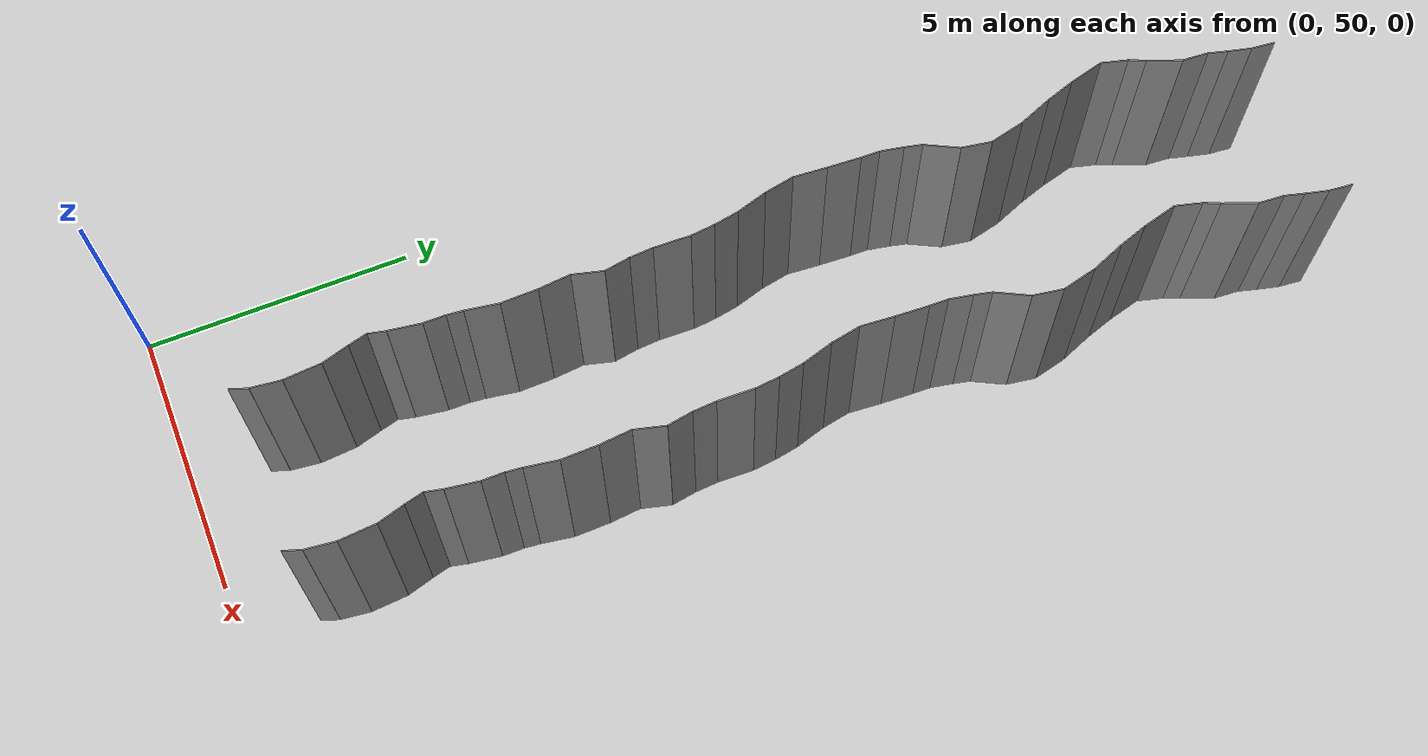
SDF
<sdf version="1.6">
 <world name="default">
  <model name="ground_plane">
   <static>1</static>
   <link name="link">
    <collision name="collision">
     <geometry><plane><normal>0 0 1</normal><size>200 200</size></plane></geometry>
     <surface><friction><ode><mu>100</mu><mu2>50</mu2></ode></friction></surface>
    </collision>
    <visual name="visual">
     <cast_shadows>0</cast_shadows>
     <geometry><plane><normal>0 0 1</normal><size>200 200</size></plane></geometry>
     <material>
      <script><uri>file://media/materials/scripts/gazebo.material</uri><name>Gazebo/Grey</name></script>
     </material>
    </visual>
   </link>
   <pose>0 100 0 0 -0 0</pose>
  </model>
  <model name="wall_224">
   <static>1</static>
   <pose>3.2141089525234556 51.56138882406007 2 0 0 -0.3240134306546957</pose>
   <link name="link">
    <collision name="collision"><geometry><box><size>0.02 0.346863804644 4</size></box></geometry></collision>
    <visual name="visual">
     <material>
      <script><name>Gazebo/Grey</name><uri>file://media/materials/scripts/gazebo.material</uri></script>
     </material>
     <geometry><box><size>0.02 0.346863804644 4</size></box></geometry>
    </visual>
   </link>
  </model>
  <model name="wall_225">
   <static>1</static>
   <pose>6.214108952523455 51.56138882406007 2 0 0 -0.3240134306546957</pose>
   <link name="link">
    <collision name="collision"><geometry><box><size>0.02 0.346863804644 4</size></box></geometry></collision>
    <visual name="visual">
     <material>
      <script><name>Gazebo/Grey</name><uri>file://media/materials/scripts/gazebo.material</uri></script>
     </material>
     <geometry><box><size>0.02 0.346863804644 4</size></box></geometry>
    </visual>
   </link>
  </model>
  <model name="wall_226">
   <static>1</static>
   <pose>3.300787356913296 52.006380681514905 2 0 0 -0.11166467689607984</pose>
   <link name="link">
    <collision name="collision"><geometry><box><size>0.02 0.564685746026 4</size></box></geometry></collision>
    <visual name="visual">
     <material>
      <script><name>Gazebo/Grey</name><uri>file://media/materials/scripts/gazebo.material</uri></script>
     </material>
     <geometry><box><size>0.02 0.564685746026 4</size></box></geometry>
    </visual>
   </link>
  </model>
  <model name="wall_227">
   <static>1</static>
   <pose>6.300787356913296 52.006380681514905 2 0 0 -0.11166467689607984</pose>
   <link name="link">
    <collision name="collision"><geometry><box><size>0.02 0.564685746026 4</size></box></geometry></collision>
    <visual name="visual">
     <material>
      <script><name>Gazebo/Grey</name><uri>file://media/materials/scripts/gazebo.material</uri></script>
     </material>
     <geometry><box><size>0.02 0.564685746026 4</size></box></geometry>
    </visual>
   </link>
  </model>
  <model name="wall_228">
   <static>1</static>
   <pose>3.3062415293632816 52.63462890343357 2 0 0 0.07466903795491382</pose>
   <link name="link">
    <collision name="collision"><geometry><box><size>0.02 0.697270475184 4</size></box></geometry></collision>
    <visual name="visual">
     <material>
      <script><name>Gazebo/Grey</name><uri>file://media/materials/scripts/gazebo.material</uri></script>
     </material>
     <geometry><box><size>0.02 0.697270475184 4</size></box></geometry>
    </visual>
   </link>
  </model>
  <model name="wall_229">
   <static>1</static>
   <pose>6.306241529363282 52.63462890343357 2 0 0 0.07466903795491382</pose>
   <link name="link">
    <collision name="collision"><geometry><box><size>0.02 0.697270475184 4</size></box></geometry></collision>
    <visual name="visual">
     <material>
      <script><name>Gazebo/Grey</name><uri>file://media/materials/scripts/gazebo.material</uri></script>
     </material>
     <geometry><box><size>0.02 0.697270475184 4</size></box></geometry>
    </visual>
   </link>
  </model>
  <model name="wall_230">
   <static>1</static>
   <pose>3.2071329257017234 53.236075350964654 2 0 0 0.2804520608229891</pose>
   <link name="link">
    <collision name="collision"><geometry><box><size>0.02 0.528201954046 4</size></box></geometry></collision>
    <visual name="visual">
     <material>
      <script><name>Gazebo/Grey</name><uri>file://media/materials/scripts/gazebo.material</uri></script>
     </material>
     <geometry><box><size>0.02 0.528201954046 4</size></box></geometry>
    </visual>
   </link>
  </model>
  <model name="wall_231">
   <static>1</static>
   <pose>6.207132925701723 53.236075350964654 2 0 0 0.2804520608229891</pose>
   <link name="link">
    <collision name="collision"><geometry><box><size>0.02 0.528201954046 4</size></box></geometry></collision>
    <visual name="visual">
     <material>
      <script><name>Gazebo/Grey</name><uri>file://media/materials/scripts/gazebo.material</uri></script>
     </material>
     <geometry><box><size>0.02 0.528201954046 4</size></box></geometry>
    </visual>
   </link>
  </model>
  <model name="wall_232">
   <static>1</static>
   <pose>3.087802989265437 53.66736365586836 2 0 0 0.2547792932424635</pose>
   <link name="link">
    <collision name="collision"><geometry><box><size>0.02 0.366853714408 4</size></box></geometry></collision>
    <visual name="visual">
     <material>
      <script><name>Gazebo/Grey</name><uri>file://media/materials/scripts/gazebo.material</uri></script>
     </material>
     <geometry><box><size>0.02 0.366853714408 4</size></box></geometry>
    </visual>
   </link>
  </model>
  <model name="wall_233">
   <static>1</static>
   <pose>6.0878029892654375 53.66736365586836 2 0 0 0.2547792932424635</pose>
   <link name="link">
    <collision name="collision"><geometry><box><size>0.02 0.366853714408 4</size></box></geometry></collision>
    <visual name="visual">
     <material>
      <script><name>Gazebo/Grey</name><uri>file://media/materials/scripts/gazebo.material</uri></script>
     </material>
     <geometry><box><size>0.02 0.366853714408 4</size></box></geometry>
    </visual>
   </link>
  </model>
  <model name="wall_234">
   <static>1</static>
   <pose>3.0771454903987463 54.00668623495577 2 0 0 -0.21638632822851983</pose>
   <link name="link">
    <collision name="collision"><geometry><box><size>0.02 0.331361318959 4</size></box></geometry></collision>
    <visual name="visual">
     <material>
      <script><name>Gazebo/Grey</name><uri>file://media/materials/scripts/gazebo.material</uri></script>
     </material>
     <geometry><box><size>0.02 0.331361318959 4</size></box></geometry>
    </visual>
   </link>
  </model>
  <model name="wall_235">
   <static>1</static>
   <pose>6.077145490398746 54.00668623495577 2 0 0 -0.21638632822851983</pose>
   <link name="link">
    <collision name="collision"><geometry><box><size>0.02 0.331361318959 4</size></box></geometry></collision>
    <visual name="visual">
     <material>
      <script><name>Gazebo/Grey</name><uri>file://media/materials/scripts/gazebo.material</uri></script>
     </material>
     <geometry><box><size>0.02 0.331361318959 4</size></box></geometry>
    </visual>
   </link>
  </model>
  <model name="wall_236">
   <static>1</static>
   <pose>3.155814588655785 54.47214756548829 2 0 0 -0.14099137475419268</pose>
   <link name="link">
    <collision name="collision"><geometry><box><size>0.02 0.613375210009 4</size></box></geometry></collision>
    <visual name="visual">
     <material>
      <script><name>Gazebo/Grey</name><uri>file://media/materials/scripts/gazebo.material</uri></script>
     </material>
     <geometry><box><size>0.02 0.613375210009 4</size></box></geometry>
    </visual>
   </link>
  </model>
  <model name="wall_237">
   <static>1</static>
   <pose>6.155814588655785 54.47214756548829 2 0 0 -0.14099137475419268</pose>
   <link name="link">
    <collision name="collision"><geometry><box><size>0.02 0.613375210009 4</size></box></geometry></collision>
    <visual name="visual">
     <material>
      <script><name>Gazebo/Grey</name><uri>file://media/materials/scripts/gazebo.material</uri></script>
     </material>
     <geometry><box><size>0.02 0.613375210009 4</size></box></geometry>
    </visual>
   </link>
  </model>
  <model name="wall_238">
   <static>1</static>
   <pose>3.1989945356877767 54.98062237627742 2 0 0 -0.00040402634944552084</pose>
   <link name="link">
    <collision name="collision"><geometry><box><size>0.02 0.409660862873 4</size></box></geometry></collision>
    <visual name="visual">
     <material>
      <script><name>Gazebo/Grey</name><uri>file://media/materials/scripts/gazebo.material</uri></script>
     </material>
     <geometry><box><size>0.02 0.409660862873 4</size></box></geometry>
    </visual>
   </link>
  </model>
  <model name="wall_239">
   <static>1</static>
   <pose>6.198994535687777 54.98062237627742 2 0 0 -0.00040402634944552084</pose>
   <link name="link">
    <collision name="collision"><geometry><box><size>0.02 0.409660862873 4</size></box></geometry></collision>
    <visual name="visual">
     <material>
      <script><name>Gazebo/Grey</name><uri>file://media/materials/scripts/gazebo.material</uri></script>
     </material>
     <geometry><box><size>0.02 0.409660862873 4</size></box></geometry>
    </visual>
   </link>
  </model>
  <model name="wall_240">
   <static>1</static>
   <pose>3.213927627974739 55.33591123557289 2 0 0 -0.0983819309122988</pose>
   <link name="link">
    <collision name="collision"><geometry><box><size>0.02 0.302379073389 4</size></box></geometry></collision>
    <visual name="visual">
     <material>
      <script><name>Gazebo/Grey</name><uri>file://media/materials/scripts/gazebo.material</uri></script>
     </material>
     <geometry><box><size>0.02 0.302379073389 4</size></box></geometry>
    </visual>
   </link>
  </model>
  <model name="wall_241">
   <static>1</static>
   <pose>6.213927627974739 55.33591123557289 2 0 0 -0.0983819309122988</pose>
   <link name="link">
    <collision name="collision"><geometry><box><size>0.02 0.302379073389 4</size></box></geometry></collision>
    <visual name="visual">
     <material>
      <script><name>Gazebo/Grey</name><uri>file://media/materials/scripts/gazebo.material</uri></script>
     </material>
     <geometry><box><size>0.02 0.302379073389 4</size></box></geometry>
    </visual>
   </link>
  </model>
  <model name="wall_242">
   <static>1</static>
   <pose>3.276093314935174 55.794129614914524 2 0 0 -0.15254670400230202</pose>
   <link name="link">
    <collision name="collision"><geometry><box><size>0.02 0.622751699925 4</size></box></geometry></collision>
    <visual name="visual">
     <material>
      <script><name>Gazebo/Grey</name><uri>file://media/materials/scripts/gazebo.material</uri></script>
     </material>
     <geometry><box><size>0.02 0.622751699925 4</size></box></geometry>
    </visual>
   </link>
  </model>
  <model name="wall_243">
   <static>1</static>
   <pose>6.276093314935174 55.794129614914524 2 0 0 -0.15254670400230202</pose>
   <link name="link">
    <collision name="collision"><geometry><box><size>0.02 0.622751699925 4</size></box></geometry></collision>
    <visual name="visual">
     <material>
      <script><name>Gazebo/Grey</name><uri>file://media/materials/scripts/gazebo.material</uri></script>
     </material>
     <geometry><box><size>0.02 0.622751699925 4</size></box></geometry>
    </visual>
   </link>
  </model>
  <model name="wall_244">
   <static>1</static>
   <pose>3.3164511366660134 56.44248215823689 2 0 0 0.02042487748180735</pose>
   <link name="link">
    <collision name="collision"><geometry><box><size>0.02 0.68132732875 4</size></box></geometry></collision>
    <visual name="visual">
     <material>
      <script><name>Gazebo/Grey</name><uri>file://media/materials/scripts/gazebo.material</uri></script>
     </material>
     <geometry><box><size>0.02 0.68132732875 4</size></box></geometry>
    </visual>
   </link>
  </model>
  <model name="wall_245">
   <static>1</static>
   <pose>6.316451136666013 56.44248215823689 2 0 0 0.02042487748180735</pose>
   <link name="link">
    <collision name="collision"><geometry><box><size>0.02 0.68132732875 4</size></box></geometry></collision>
    <visual name="visual">
     <material>
      <script><name>Gazebo/Grey</name><uri>file://media/materials/scripts/gazebo.material</uri></script>
     </material>
     <geometry><box><size>0.02 0.68132732875 4</size></box></geometry>
    </visual>
   </link>
  </model>
  <model name="wall_246">
   <static>1</static>
   <pose>3.2818159672972245 57.08306931194954 2 0 0 0.09200003128254432</pose>
   <link name="link">
    <collision name="collision"><geometry><box><size>0.02 0.602537231557 4</size></box></geometry></collision>
    <visual name="visual">
     <material>
      <script><name>Gazebo/Grey</name><uri>file://media/materials/scripts/gazebo.material</uri></script>
     </material>
     <geometry><box><size>0.02 0.602537231557 4</size></box></geometry>
    </visual>
   </link>
  </model>
  <model name="wall_247">
   <static>1</static>
   <pose>6.2818159672972245 57.08306931194954 2 0 0 0.09200003128254432</pose>
   <link name="link">
    <collision name="collision"><geometry><box><size>0.02 0.602537231557 4</size></box></geometry></collision>
    <visual name="visual">
     <material>
      <script><name>Gazebo/Grey</name><uri>file://media/materials/scripts/gazebo.material</uri></script>
     </material>
     <geometry><box><size>0.02 0.602537231557 4</size></box></geometry>
    </visual>
   </link>
  </model>
  <model name="wall_248">
   <static>1</static>
   <pose>3.326720095772563 57.66474867620582 2 0 0 -0.2521844929648068</pose>
   <link name="link">
    <collision name="collision"><geometry><box><size>0.02 0.58177126213 4</size></box></geometry></collision>
    <visual name="visual">
     <material>
      <script><name>Gazebo/Grey</name><uri>file://media/materials/scripts/gazebo.material</uri></script>
     </material>
     <geometry><box><size>0.02 0.58177126213 4</size></box></geometry>
    </visual>
   </link>
  </model>
  <model name="wall_249">
   <static>1</static>
   <pose>6.326720095772563 57.66474867620582 2 0 0 -0.2521844929648068</pose>
   <link name="link">
    <collision name="collision"><geometry><box><size>0.02 0.58177126213 4</size></box></geometry></collision>
    <visual name="visual">
     <material>
      <script><name>Gazebo/Grey</name><uri>file://media/materials/scripts/gazebo.material</uri></script>
     </material>
     <geometry><box><size>0.02 0.58177126213 4</size></box></geometry>
    </visual>
   </link>
  </model>
  <model name="wall_250">
   <static>1</static>
   <pose>3.36007095331097 58.18201699966343 2 0 0 0.16501235390799612</pose>
   <link name="link">
    <collision name="collision"><geometry><box><size>0.02 0.477655322848 4</size></box></geometry></collision>
    <visual name="visual">
     <material>
      <script><name>Gazebo/Grey</name><uri>file://media/materials/scripts/gazebo.material</uri></script>
     </material>
     <geometry><box><size>0.02 0.477655322848 4</size></box></geometry>
    </visual>
   </link>
  </model>
  <model name="wall_251">
   <static>1</static>
   <pose>6.36007095331097 58.18201699966343 2 0 0 0.16501235390799612</pose>
   <link name="link">
    <collision name="collision"><geometry><box><size>0.02 0.477655322848 4</size></box></geometry></collision>
    <visual name="visual">
     <material>
      <script><name>Gazebo/Grey</name><uri>file://media/materials/scripts/gazebo.material</uri></script>
     </material>
     <geometry><box><size>0.02 0.477655322848 4</size></box></geometry>
    </visual>
   </link>
  </model>
  <model name="wall_252">
   <static>1</static>
   <pose>3.3062960410877507 58.636267550951 2 0 0 0.06641426696674312</pose>
   <link name="link">
    <collision name="collision"><geometry><box><size>0.02 0.438300378282 4</size></box></geometry></collision>
    <visual name="visual">
     <material>
      <script><name>Gazebo/Grey</name><uri>file://media/materials/scripts/gazebo.material</uri></script>
     </material>
     <geometry><box><size>0.02 0.438300378282 4</size></box></geometry>
    </visual>
   </link>
  </model>
  <model name="wall_253">
   <static>1</static>
   <pose>6.306296041087751 58.636267550951 2 0 0 0.06641426696674312</pose>
   <link name="link">
    <collision name="collision"><geometry><box><size>0.02 0.438300378282 4</size></box></geometry></collision>
    <visual name="visual">
     <material>
      <script><name>Gazebo/Grey</name><uri>file://media/materials/scripts/gazebo.material</uri></script>
     </material>
     <geometry><box><size>0.02 0.438300378282 4</size></box></geometry>
    </visual>
   </link>
  </model>
  <model name="wall_254">
   <static>1</static>
   <pose>3.301097102014743 59.195299117328 2 0 0 -0.027449146413969425</pose>
   <link name="link">
    <collision name="collision"><geometry><box><size>0.02 0.680985568992 4</size></box></geometry></collision>
    <visual name="visual">
     <material>
      <script><name>Gazebo/Grey</name><uri>file://media/materials/scripts/gazebo.material</uri></script>
     </material>
     <geometry><box><size>0.02 0.680985568992 4</size></box></geometry>
    </visual>
   </link>
  </model>
  <model name="wall_255">
   <static>1</static>
   <pose>6.301097102014743 59.195299117328 2 0 0 -0.027449146413969425</pose>
   <link name="link">
    <collision name="collision"><geometry><box><size>0.02 0.680985568992 4</size></box></geometry></collision>
    <visual name="visual">
     <material>
      <script><name>Gazebo/Grey</name><uri>file://media/materials/scripts/gazebo.material</uri></script>
     </material>
     <geometry><box><size>0.02 0.680985568992 4</size></box></geometry>
    </visual>
   </link>
  </model>
  <model name="wall_256">
   <static>1</static>
   <pose>3.2882475841567906 59.758694300522194 2 0 0 0.09918702863541397</pose>
   <link name="link">
    <collision name="collision"><geometry><box><size>0.02 0.448264548575 4</size></box></geometry></collision>
    <visual name="visual">
     <material>
      <script><name>Gazebo/Grey</name><uri>file://media/materials/scripts/gazebo.material</uri></script>
     </material>
     <geometry><box><size>0.02 0.448264548575 4</size></box></geometry>
    </visual>
   </link>
  </model>
  <model name="wall_257">
   <static>1</static>
   <pose>6.288247584156791 59.758694300522194 2 0 0 0.09918702863541397</pose>
   <link name="link">
    <collision name="collision"><geometry><box><size>0.02 0.448264548575 4</size></box></geometry></collision>
    <visual name="visual">
     <material>
      <script><name>Gazebo/Grey</name><uri>file://media/materials/scripts/gazebo.material</uri></script>
     </material>
     <geometry><box><size>0.02 0.448264548575 4</size></box></geometry>
    </visual>
   </link>
  </model>
  <model name="wall_258">
   <static>1</static>
   <pose>3.225162232379213 60.2123693109512 2 0 0 0.175466058345245</pose>
   <link name="link">
    <collision name="collision"><geometry><box><size>0.02 0.468482101381 4</size></box></geometry></collision>
    <visual name="visual">
     <material>
      <script><name>Gazebo/Grey</name><uri>file://media/materials/scripts/gazebo.material</uri></script>
     </material>
     <geometry><box><size>0.02 0.468482101381 4</size></box></geometry>
    </visual>
   </link>
  </model>
  <model name="wall_259">
   <static>1</static>
   <pose>6.225162232379213 60.2123693109512 2 0 0 0.175466058345245</pose>
   <link name="link">
    <collision name="collision"><geometry><box><size>0.02 0.468482101381 4</size></box></geometry></collision>
    <visual name="visual">
     <material>
      <script><name>Gazebo/Grey</name><uri>file://media/materials/scripts/gazebo.material</uri></script>
     </material>
     <geometry><box><size>0.02 0.468482101381 4</size></box></geometry>
    </visual>
   </link>
  </model>
  <model name="wall_260">
   <static>1</static>
   <pose>3.098531344197385 60.72968160796762 2 0 0 0.2906236432433135</pose>
   <link name="link">
    <collision name="collision"><geometry><box><size>0.02 0.598430886243 4</size></box></geometry></collision>
    <visual name="visual">
     <material>
      <script><name>Gazebo/Grey</name><uri>file://media/materials/scripts/gazebo.material</uri></script>
     </material>
     <geometry><box><size>0.02 0.598430886243 4</size></box></geometry>
    </visual>
   </link>
  </model>
  <model name="wall_261">
   <static>1</static>
   <pose>6.098531344197385 60.72968160796762 2 0 0 0.2906236432433135</pose>
   <link name="link">
    <collision name="collision"><geometry><box><size>0.02 0.598430886243 4</size></box></geometry></collision>
    <visual name="visual">
     <material>
      <script><name>Gazebo/Grey</name><uri>file://media/materials/scripts/gazebo.material</uri></script>
     </material>
     <geometry><box><size>0.02 0.598430886243 4</size></box></geometry>
    </visual>
   </link>
  </model>
  <model name="wall_262">
   <static>1</static>
   <pose>2.9596139364419765 61.29311116914219 2 0 0 0.18982766837920925</pose>
   <link name="link">
    <collision name="collision"><geometry><box><size>0.02 0.563648165056 4</size></box></geometry></collision>
    <visual name="visual">
     <material>
      <script><name>Gazebo/Grey</name><uri>file://media/materials/scripts/gazebo.material</uri></script>
     </material>
     <geometry><box><size>0.02 0.563648165056 4</size></box></geometry>
    </visual>
   </link>
  </model>
  <model name="wall_263">
   <static>1</static>
   <pose>5.9596139364419765 61.29311116914219 2 0 0 0.18982766837920925</pose>
   <link name="link">
    <collision name="collision"><geometry><box><size>0.02 0.563648165056 4</size></box></geometry></collision>
    <visual name="visual">
     <material>
      <script><name>Gazebo/Grey</name><uri>file://media/materials/scripts/gazebo.material</uri></script>
     </material>
     <geometry><box><size>0.02 0.563648165056 4</size></box></geometry>
    </visual>
   </link>
  </model>
  <model name="wall_264">
   <static>1</static>
   <pose>2.9283147972181087 61.881228269095644 2 0 0 -0.07015212762809685</pose>
   <link name="link">
    <collision name="collision"><geometry><box><size>0.02 0.624246406859 4</size></box></geometry></collision>
    <visual name="visual">
     <material>
      <script><name>Gazebo/Grey</name><uri>file://media/materials/scripts/gazebo.material</uri></script>
     </material>
     <geometry><box><size>0.02 0.624246406859 4</size></box></geometry>
    </visual>
   </link>
  </model>
  <model name="wall_265">
   <static>1</static>
   <pose>5.928314797218109 61.881228269095644 2 0 0 -0.07015212762809685</pose>
   <link name="link">
    <collision name="collision"><geometry><box><size>0.02 0.624246406859 4</size></box></geometry></collision>
    <visual name="visual">
     <material>
      <script><name>Gazebo/Grey</name><uri>file://media/materials/scripts/gazebo.material</uri></script>
     </material>
     <geometry><box><size>0.02 0.624246406859 4</size></box></geometry>
    </visual>
   </link>
  </model>
  <model name="wall_266">
   <static>1</static>
   <pose>2.9660271109237946 62.50050321813883 2 0 0 -0.05137780929476877</pose>
   <link name="link">
    <collision name="collision"><geometry><box><size>0.02 0.616652623419 4</size></box></geometry></collision>
    <visual name="visual">
     <material>
      <script><name>Gazebo/Grey</name><uri>file://media/materials/scripts/gazebo.material</uri></script>
     </material>
     <geometry><box><size>0.02 0.616652623419 4</size></box></geometry>
    </visual>
   </link>
  </model>
  <model name="wall_267">
   <static>1</static>
   <pose>5.966027110923795 62.50050321813883 2 0 0 -0.05137780929476877</pose>
   <link name="link">
    <collision name="collision"><geometry><box><size>0.02 0.616652623419 4</size></box></geometry></collision>
    <visual name="visual">
     <material>
      <script><name>Gazebo/Grey</name><uri>file://media/materials/scripts/gazebo.material</uri></script>
     </material>
     <geometry><box><size>0.02 0.616652623419 4</size></box></geometry>
    </visual>
   </link>
  </model>
  <model name="wall_268">
   <static>1</static>
   <pose>2.984484041568865 62.98031835009344 2 0 0 -0.015256725196990919</pose>
   <link name="link">
    <collision name="collision"><geometry><box><size>0.02 0.343831359687 4</size></box></geometry></collision>
    <visual name="visual">
     <material>
      <script><name>Gazebo/Grey</name><uri>file://media/materials/scripts/gazebo.material</uri></script>
     </material>
     <geometry><box><size>0.02 0.343831359687 4</size></box></geometry>
    </visual>
   </link>
  </model>
  <model name="wall_269">
   <static>1</static>
   <pose>5.984484041568865 62.98031835009344 2 0 0 -0.015256725196990919</pose>
   <link name="link">
    <collision name="collision"><geometry><box><size>0.02 0.343831359687 4</size></box></geometry></collision>
    <visual name="visual">
     <material>
      <script><name>Gazebo/Grey</name><uri>file://media/materials/scripts/gazebo.material</uri></script>
     </material>
     <geometry><box><size>0.02 0.343831359687 4</size></box></geometry>
    </visual>
   </link>
  </model>
  <model name="wall_270">
   <static>1</static>
   <pose>3.0262152863481733 63.366435592120496 2 0 0 -0.180572328115979</pose>
   <link name="link">
    <collision name="collision"><geometry><box><size>0.02 0.435524299979 4</size></box></geometry></collision>
    <visual name="visual">
     <material>
      <script><name>Gazebo/Grey</name><uri>file://media/materials/scripts/gazebo.material</uri></script>
     </material>
     <geometry><box><size>0.02 0.435524299979 4</size></box></geometry>
    </visual>
   </link>
  </model>
  <model name="wall_271">
   <static>1</static>
   <pose>6.026215286348173 63.366435592120496 2 0 0 -0.180572328115979</pose>
   <link name="link">
    <collision name="collision"><geometry><box><size>0.02 0.435524299979 4</size></box></geometry></collision>
    <visual name="visual">
     <material>
      <script><name>Gazebo/Grey</name><uri>file://media/materials/scripts/gazebo.material</uri></script>
     </material>
     <geometry><box><size>0.02 0.435524299979 4</size></box></geometry>
    </visual>
   </link>
  </model>
  <model name="wall_272">
   <static>1</static>
   <pose>3.101852068460148 63.740610713403484 2 0 0 -0.22451802937565907</pose>
   <link name="link">
    <collision name="collision"><geometry><box><size>0.02 0.328142991375 4</size></box></geometry></collision>
    <visual name="visual">
     <material>
      <script><name>Gazebo/Grey</name><uri>file://media/materials/scripts/gazebo.material</uri></script>
     </material>
     <geometry><box><size>0.02 0.328142991375 4</size></box></geometry>
    </visual>
   </link>
  </model>
  <model name="wall_273">
   <static>1</static>
   <pose>6.101852068460148 63.740610713403484 2 0 0 -0.22451802937565907</pose>
   <link name="link">
    <collision name="collision"><geometry><box><size>0.02 0.328142991375 4</size></box></geometry></collision>
    <visual name="visual">
     <material>
      <script><name>Gazebo/Grey</name><uri>file://media/materials/scripts/gazebo.material</uri></script>
     </material>
     <geometry><box><size>0.02 0.328142991375 4</size></box></geometry>
    </visual>
   </link>
  </model>
  <model name="wall_274">
   <static>1</static>
   <pose>3.286854576417129 64.1976936718772 2 0 0 -0.4634039103902514</pose>
   <link name="link">
    <collision name="collision"><geometry><box><size>0.02 0.664320625315 4</size></box></geometry></collision>
    <visual name="visual">
     <material>
      <script><name>Gazebo/Grey</name><uri>file://media/materials/scripts/gazebo.material</uri></script>
     </material>
     <geometry><box><size>0.02 0.664320625315 4</size></box></geometry>
    </visual>
   </link>
  </model>
  <model name="wall_275">
   <static>1</static>
   <pose>6.286854576417129 64.1976936718772 2 0 0 -0.4634039103902514</pose>
   <link name="link">
    <collision name="collision"><geometry><box><size>0.02 0.664320625315 4</size></box></geometry></collision>
    <visual name="visual">
     <material>
      <script><name>Gazebo/Grey</name><uri>file://media/materials/scripts/gazebo.material</uri></script>
     </material>
     <geometry><box><size>0.02 0.664320625315 4</size></box></geometry>
    </visual>
   </link>
  </model>
  <model name="wall_276">
   <static>1</static>
   <pose>3.4780618775152425 64.76946534206817 2 0 0 -0.1543577720530472</pose>
   <link name="link">
    <collision name="collision"><geometry><box><size>0.02 0.555893840139 4</size></box></geometry></collision>
    <visual name="visual">
     <material>
      <script><name>Gazebo/Grey</name><uri>file://media/materials/scripts/gazebo.material</uri></script>
     </material>
     <geometry><box><size>0.02 0.555893840139 4</size></box></geometry>
    </visual>
   </link>
  </model>
  <model name="wall_277">
   <static>1</static>
   <pose>6.478061877515243 64.76946534206817 2 0 0 -0.1543577720530472</pose>
   <link name="link">
    <collision name="collision"><geometry><box><size>0.02 0.555893840139 4</size></box></geometry></collision>
    <visual name="visual">
     <material>
      <script><name>Gazebo/Grey</name><uri>file://media/materials/scripts/gazebo.material</uri></script>
     </material>
     <geometry><box><size>0.02 0.555893840139 4</size></box></geometry>
    </visual>
   </link>
  </model>
  <model name="wall_278">
   <static>1</static>
   <pose>3.445562803986175 65.36039009492201 2 0 0 0.2335242003032695</pose>
   <link name="link">
    <collision name="collision"><geometry><box><size>0.02 0.650213789989 4</size></box></geometry></collision>
    <visual name="visual">
     <material>
      <script><name>Gazebo/Grey</name><uri>file://media/materials/scripts/gazebo.material</uri></script>
     </material>
     <geometry><box><size>0.02 0.650213789989 4</size></box></geometry>
    </visual>
   </link>
  </model>
  <model name="wall_279">
   <static>1</static>
   <pose>6.445562803986175 65.36039009492201 2 0 0 0.2335242003032695</pose>
   <link name="link">
    <collision name="collision"><geometry><box><size>0.02 0.650213789989 4</size></box></geometry></collision>
    <visual name="visual">
     <material>
      <script><name>Gazebo/Grey</name><uri>file://media/materials/scripts/gazebo.material</uri></script>
     </material>
     <geometry><box><size>0.02 0.650213789989 4</size></box></geometry>
    </visual>
   </link>
  </model>
  <model name="wall_280">
   <static>1</static>
   <pose>3.248252909899684 65.98210296604667 2 0 0 0.38023981988664207</pose>
   <link name="link">
    <collision name="collision"><geometry><box><size>0.02 0.657847057915 4</size></box></geometry></collision>
    <visual name="visual">
     <material>
      <script><name>Gazebo/Grey</name><uri>file://media/materials/scripts/gazebo.material</uri></script>
     </material>
     <geometry><box><size>0.02 0.657847057915 4</size></box></geometry>
    </visual>
   </link>
  </model>
  <model name="wall_281">
   <static>1</static>
   <pose>6.2482529098996835 65.98210296604667 2 0 0 0.38023981988664207</pose>
   <link name="link">
    <collision name="collision"><geometry><box><size>0.02 0.657847057915 4</size></box></geometry></collision>
    <visual name="visual">
     <material>
      <script><name>Gazebo/Grey</name><uri>file://media/materials/scripts/gazebo.material</uri></script>
     </material>
     <geometry><box><size>0.02 0.657847057915 4</size></box></geometry>
    </visual>
   </link>
  </model>
  <model name="wall_282">
   <static>1</static>
   <pose>3.0396796343898225 66.54692579393094 2 0 0 0.32185951497823384</pose>
   <link name="link">
    <collision name="collision"><geometry><box><size>0.02 0.54686715833 4</size></box></geometry></collision>
    <visual name="visual">
     <material>
      <script><name>Gazebo/Grey</name><uri>file://media/materials/scripts/gazebo.material</uri></script>
     </material>
     <geometry><box><size>0.02 0.54686715833 4</size></box></geometry>
    </visual>
   </link>
  </model>
  <model name="wall_283">
   <static>1</static>
   <pose>6.039679634389822 66.54692579393094 2 0 0 0.32185951497823384</pose>
   <link name="link">
    <collision name="collision"><geometry><box><size>0.02 0.54686715833 4</size></box></geometry></collision>
    <visual name="visual">
     <material>
      <script><name>Gazebo/Grey</name><uri>file://media/materials/scripts/gazebo.material</uri></script>
     </material>
     <geometry><box><size>0.02 0.54686715833 4</size></box></geometry>
    </visual>
   </link>
  </model>
  <model name="wall_284">
   <static>1</static>
   <pose>2.8685983220980784 67.12824553796432 2 0 0 0.2569403430839281</pose>
   <link name="link">
    <collision name="collision"><geometry><box><size>0.02 0.665708450709 4</size></box></geometry></collision>
    <visual name="visual">
     <material>
      <script><name>Gazebo/Grey</name><uri>file://media/materials/scripts/gazebo.material</uri></script>
     </material>
     <geometry><box><size>0.02 0.665708450709 4</size></box></geometry>
    </visual>
   </link>
  </model>
  <model name="wall_285">
   <static>1</static>
   <pose>5.868598322098078 67.12824553796432 2 0 0 0.2569403430839281</pose>
   <link name="link">
    <collision name="collision"><geometry><box><size>0.02 0.665708450709 4</size></box></geometry></collision>
    <visual name="visual">
     <material>
      <script><name>Gazebo/Grey</name><uri>file://media/materials/scripts/gazebo.material</uri></script>
     </material>
     <geometry><box><size>0.02 0.665708450709 4</size></box></geometry>
    </visual>
   </link>
  </model>
  <model name="wall_286">
   <static>1</static>
   <pose>2.8457631131359413 67.68784083903776 2 0 0 -0.2541980638985953</pose>
   <link name="link">
    <collision name="collision"><geometry><box><size>0.02 0.49111795043 4</size></box></geometry></collision>
    <visual name="visual">
     <material>
      <script><name>Gazebo/Grey</name><uri>file://media/materials/scripts/gazebo.material</uri></script>
     </material>
     <geometry><box><size>0.02 0.49111795043 4</size></box></geometry>
    </visual>
   </link>
  </model>
  <model name="wall_287">
   <static>1</static>
   <pose>5.845763113135941 67.68784083903776 2 0 0 -0.2541980638985953</pose>
   <link name="link">
    <collision name="collision"><geometry><box><size>0.02 0.49111795043 4</size></box></geometry></collision>
    <visual name="visual">
     <material>
      <script><name>Gazebo/Grey</name><uri>file://media/materials/scripts/gazebo.material</uri></script>
     </material>
     <geometry><box><size>0.02 0.49111795043 4</size></box></geometry>
    </visual>
   </link>
  </model>
  <model name="wall_288">
   <static>1</static>
   <pose>2.9673019181323763 68.07206620647224 2 0 0 -0.3873420299488836</pose>
   <link name="link">
    <collision name="collision"><geometry><box><size>0.02 0.316567189639 4</size></box></geometry></collision>
    <visual name="visual">
     <material>
      <script><name>Gazebo/Grey</name><uri>file://media/materials/scripts/gazebo.material</uri></script>
     </material>
     <geometry><box><size>0.02 0.316567189639 4</size></box></geometry>
    </visual>
   </link>
  </model>
  <model name="wall_289">
   <static>1</static>
   <pose>5.967301918132376 68.07206620647224 2 0 0 -0.3873420299488836</pose>
   <link name="link">
    <collision name="collision"><geometry><box><size>0.02 0.316567189639 4</size></box></geometry></collision>
    <visual name="visual">
     <material>
      <script><name>Gazebo/Grey</name><uri>file://media/materials/scripts/gazebo.material</uri></script>
     </material>
     <geometry><box><size>0.02 0.316567189639 4</size></box></geometry>
    </visual>
   </link>
  </model>
  <model name="wall_290">
   <static>1</static>
   <pose>3.142398822312244 68.51915176926843 2 0 0 -0.36636450270259163</pose>
   <link name="link">
    <collision name="collision"><geometry><box><size>0.02 0.643780344015 4</size></box></geometry></collision>
    <visual name="visual">
     <material>
      <script><name>Gazebo/Grey</name><uri>file://media/materials/scripts/gazebo.material</uri></script>
     </material>
     <geometry><box><size>0.02 0.643780344015 4</size></box></geometry>
    </visual>
   </link>
  </model>
  <model name="wall_291">
   <static>1</static>
   <pose>6.142398822312244 68.51915176926843 2 0 0 -0.36636450270259163</pose>
   <link name="link">
    <collision name="collision"><geometry><box><size>0.02 0.643780344015 4</size></box></geometry></collision>
    <visual name="visual">
     <material>
      <script><name>Gazebo/Grey</name><uri>file://media/materials/scripts/gazebo.material</uri></script>
     </material>
     <geometry><box><size>0.02 0.643780344015 4</size></box></geometry>
    </visual>
   </link>
  </model>
  <model name="wall_292">
   <static>1</static>
   <pose>3.2738528857767153 69.0555607723155 2 0 0 -0.06834075222939207</pose>
   <link name="link">
    <collision name="collision"><geometry><box><size>0.02 0.472865427508 4</size></box></geometry></collision>
    <visual name="visual">
     <material>
      <script><name>Gazebo/Grey</name><uri>file://media/materials/scripts/gazebo.material</uri></script>
     </material>
     <geometry><box><size>0.02 0.472865427508 4</size></box></geometry>
    </visual>
   </link>
  </model>
  <model name="wall_293">
   <static>1</static>
   <pose>6.273852885776716 69.0555607723155 2 0 0 -0.06834075222939207</pose>
   <link name="link">
    <collision name="collision"><geometry><box><size>0.02 0.472865427508 4</size></box></geometry></collision>
    <visual name="visual">
     <material>
      <script><name>Gazebo/Grey</name><uri>file://media/materials/scripts/gazebo.material</uri></script>
     </material>
     <geometry><box><size>0.02 0.472865427508 4</size></box></geometry>
    </visual>
   </link>
  </model>
  <model name="wall_294">
   <static>1</static>
   <pose>3.335826078115233 69.46453984380881 2 0 0 -0.258812180314678</pose>
   <link name="link">
    <collision name="collision"><geometry><box><size>0.02 0.358123975084 4</size></box></geometry></collision>
    <visual name="visual">
     <material>
      <script><name>Gazebo/Grey</name><uri>file://media/materials/scripts/gazebo.material</uri></script>
     </material>
     <geometry><box><size>0.02 0.358123975084 4</size></box></geometry>
    </visual>
   </link>
  </model>
  <model name="wall_295">
   <static>1</static>
   <pose>6.3358260781152325 69.46453984380881 2 0 0 -0.258812180314678</pose>
   <link name="link">
    <collision name="collision"><geometry><box><size>0.02 0.358123975084 4</size></box></geometry></collision>
    <visual name="visual">
     <material>
      <script><name>Gazebo/Grey</name><uri>file://media/materials/scripts/gazebo.material</uri></script>
     </material>
     <geometry><box><size>0.02 0.358123975084 4</size></box></geometry>
    </visual>
   </link>
  </model>
  <model name="wall_296">
   <static>1</static>
   <pose>3.4314447042071174 69.84537960212137 2 0 0 -0.23523951054393938</pose>
   <link name="link">
    <collision name="collision"><geometry><box><size>0.02 0.427250070246 4</size></box></geometry></collision>
    <visual name="visual">
     <material>
      <script><name>Gazebo/Grey</name><uri>file://media/materials/scripts/gazebo.material</uri></script>
     </material>
     <geometry><box><size>0.02 0.427250070246 4</size></box></geometry>
    </visual>
   </link>
  </model>
  <model name="wall_297">
   <static>1</static>
   <pose>6.4314447042071174 69.84537960212137 2 0 0 -0.23523951054393938</pose>
   <link name="link">
    <collision name="collision"><geometry><box><size>0.02 0.427250070246 4</size></box></geometry></collision>
    <visual name="visual">
     <material>
      <script><name>Gazebo/Grey</name><uri>file://media/materials/scripts/gazebo.material</uri></script>
     </material>
     <geometry><box><size>0.02 0.427250070246 4</size></box></geometry>
    </visual>
   </link>
  </model>
  <model name="wall_298">
   <static>1</static>
   <pose>3.5021533522169785 70.26766321246573 2 0 0 -0.09719253260373877</pose>
   <link name="link">
    <collision name="collision"><geometry><box><size>0.02 0.431118894814 4</size></box></geometry></collision>
    <visual name="visual">
     <material>
      <script><name>Gazebo/Grey</name><uri>file://media/materials/scripts/gazebo.material</uri></script>
     </material>
     <geometry><box><size>0.02 0.431118894814 4</size></box></geometry>
    </visual>
   </link>
  </model>
  <model name="wall_299">
   <static>1</static>
   <pose>6.502153352216979 70.26766321246573 2 0 0 -0.09719253260373877</pose>
   <link name="link">
    <collision name="collision"><geometry><box><size>0.02 0.431118894814 4</size></box></geometry></collision>
    <visual name="visual">
     <material>
      <script><name>Gazebo/Grey</name><uri>file://media/materials/scripts/gazebo.material</uri></script>
     </material>
     <geometry><box><size>0.02 0.431118894814 4</size></box></geometry>
    </visual>
   </link>
  </model>
 </world>
</sdf>
